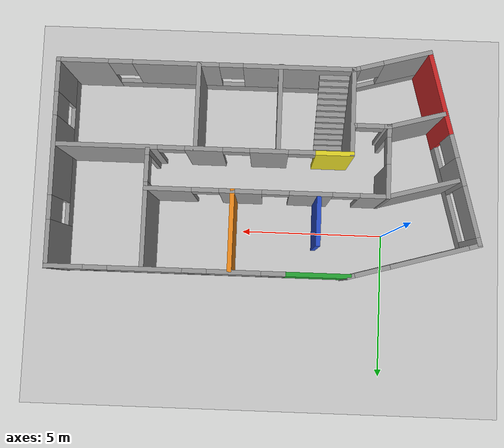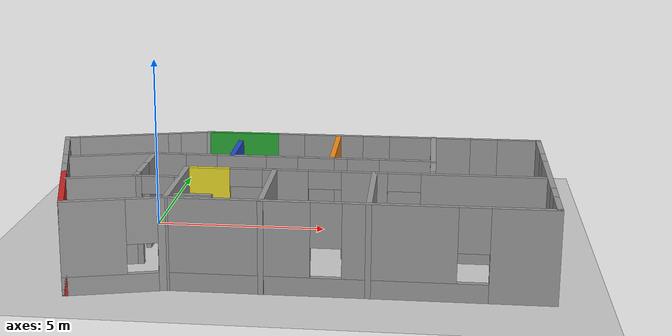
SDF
<sdf version="1.6">
 <world name="default">
  <model name="ground_plane">
   <static>1</static>
   <link name="link">
    <collision name="collision">
     <geometry><plane><normal>0 0 1</normal><size>100 100</size></plane></geometry>
     <surface>
      <contact><collide_bitmask>65535</collide_bitmask></contact>
      <friction><ode><mu>100</mu><mu2>50</mu2></ode></friction>
     </surface>
    </collision>
    <visual name="visual">
     <cast_shadows>0</cast_shadows>
     <geometry><plane><normal>0 0 1</normal><size>100 100</size></plane></geometry>
     <material>
      <script><uri>file://media/materials/scripts/gazebo.material</uri><name>Gazebo/Grey</name></script>
     </material>
    </visual>
   </link>
  </model>
  <model name="Home">
   <pose>4.21636 -2.21791 0 0 -0 0</pose>
   <link name="Stairs_1">
    <visual name="Stairs_1_Visual_0">
     <pose>-2.15165 -0.547903 0.083333 0 -0 0</pose>
     <geometry><box><size>1 0.161041 0.166667</size></box></geometry>
     <material>
      <script><uri>file://media/materials/scripts/gazebo.material</uri><name>Gazebo/Grey</name></script>
      <ambient>1 1 1 1</ambient>
     </material>
     <meta><layer>0</layer></meta>
    </visual>
    <collision name="Stairs_1_Collision_0">
     <geometry><box><size>1 0.161041 0.166667</size></box></geometry>
     <pose>-2.15165 -0.547903 0.083333 0 -0 0</pose>
    </collision>
    <visual name="Stairs_1_Visual_1">
     <pose>-2.15165 -0.708944 0.25 0 -0 0</pose>
     <geometry><box><size>1 0.161041 0.166667</size></box></geometry>
     <material>
      <script><uri>file://media/materials/scripts/gazebo.material</uri><name>Gazebo/Grey</name></script>
      <ambient>1 1 1 1</ambient>
     </material>
     <meta><layer>0</layer></meta>
    </visual>
    <collision name="Stairs_1_Collision_1">
     <geometry><box><size>1 0.161041 0.166667</size></box></geometry>
     <pose>-2.15165 -0.708944 0.25 0 -0 0</pose>
    </collision>
    <visual name="Stairs_1_Visual_2">
     <pose>-2.15165 -0.869986 0.416667 0 -0 0</pose>
     <geometry><box><size>1 0.161041 0.166667</size></box></geometry>
     <material>
      <script><uri>file://media/materials/scripts/gazebo.material</uri><name>Gazebo/Grey</name></script>
      <ambient>1 1 1 1</ambient>
     </material>
     <meta><layer>0</layer></meta>
    </visual>
    <collision name="Stairs_1_Collision_2">
     <geometry><box><size>1 0.161041 0.166667</size></box></geometry>
     <pose>-2.15165 -0.869986 0.416667 0 -0 0</pose>
    </collision>
    <visual name="Stairs_1_Visual_3">
     <pose>-2.15165 -1.03103 0.583333 0 -0 0</pose>
     <geometry><box><size>1 0.161041 0.166667</size></box></geometry>
     <material>
      <script><uri>file://media/materials/scripts/gazebo.material</uri><name>Gazebo/Grey</name></script>
      <ambient>1 1 1 1</ambient>
     </material>
     <meta><layer>0</layer></meta>
    </visual>
    <collision name="Stairs_1_Collision_3">
     <geometry><box><size>1 0.161041 0.166667</size></box></geometry>
     <pose>-2.15165 -1.03103 0.583333 0 -0 0</pose>
    </collision>
    <visual name="Stairs_1_Visual_4">
     <pose>-2.15165 -1.19207 0.75 0 -0 0</pose>
     <geometry><box><size>1 0.161041 0.166667</size></box></geometry>
     <material>
      <script><uri>file://media/materials/scripts/gazebo.material</uri><name>Gazebo/Grey</name></script>
      <ambient>1 1 1 1</ambient>
     </material>
     <meta><layer>0</layer></meta>
    </visual>
    <collision name="Stairs_1_Collision_4">
     <geometry><box><size>1 0.161041 0.166667</size></box></geometry>
     <pose>-2.15165 -1.19207 0.75 0 -0 0</pose>
    </collision>
    <visual name="Stairs_1_Visual_5">
     <pose>-2.15165 -1.35311 0.916667 0 -0 0</pose>
     <geometry><box><size>1 0.161041 0.166667</size></box></geometry>
     <material>
      <script><uri>file://media/materials/scripts/gazebo.material</uri><name>Gazebo/Grey</name></script>
      <ambient>1 1 1 1</ambient>
     </material>
     <meta><layer>0</layer></meta>
    </visual>
    <collision name="Stairs_1_Collision_5">
     <geometry><box><size>1 0.161041 0.166667</size></box></geometry>
     <pose>-2.15165 -1.35311 0.916667 0 -0 0</pose>
    </collision>
    <visual name="Stairs_1_Visual_6">
     <pose>-2.15165 -1.51415 1.08333 0 -0 0</pose>
     <geometry><box><size>1 0.161041 0.166667</size></box></geometry>
     <material>
      <script><uri>file://media/materials/scripts/gazebo.material</uri><name>Gazebo/Grey</name></script>
      <ambient>1 1 1 1</ambient>
     </material>
     <meta><layer>0</layer></meta>
    </visual>
    <collision name="Stairs_1_Collision_6">
     <geometry><box><size>1 0.161041 0.166667</size></box></geometry>
     <pose>-2.15165 -1.51415 1.08333 0 -0 0</pose>
    </collision>
    <visual name="Stairs_1_Visual_7">
     <pose>-2.15165 -1.67519 1.25 0 -0 0</pose>
     <geometry><box><size>1 0.161041 0.166667</size></box></geometry>
     <material>
      <script><uri>file://media/materials/scripts/gazebo.material</uri><name>Gazebo/Grey</name></script>
      <ambient>1 1 1 1</ambient>
     </material>
     <meta><layer>0</layer></meta>
    </visual>
    <collision name="Stairs_1_Collision_7">
     <geometry><box><size>1 0.161041 0.166667</size></box></geometry>
     <pose>-2.15165 -1.67519 1.25 0 -0 0</pose>
    </collision>
    <visual name="Stairs_1_Visual_8">
     <pose>-2.15165 -1.83623 1.41667 0 -0 0</pose>
     <geometry><box><size>1 0.161041 0.166667</size></box></geometry>
     <material>
      <script><uri>file://media/materials/scripts/gazebo.material</uri><name>Gazebo/Grey</name></script>
      <ambient>1 1 1 1</ambient>
     </material>
     <meta><layer>0</layer></meta>
    </visual>
    <collision name="Stairs_1_Collision_8">
     <geometry><box><size>1 0.161041 0.166667</size></box></geometry>
     <pose>-2.15165 -1.83623 1.41667 0 -0 0</pose>
    </collision>
    <visual name="Stairs_1_Visual_9">
     <pose>-2.15165 -1.99727 1.58333 0 -0 0</pose>
     <geometry><box><size>1 0.161041 0.166667</size></box></geometry>
     <material>
      <script><uri>file://media/materials/scripts/gazebo.material</uri><name>Gazebo/Grey</name></script>
      <ambient>1 1 1 1</ambient>
     </material>
     <meta><layer>0</layer></meta>
    </visual>
    <collision name="Stairs_1_Collision_9">
     <geometry><box><size>1 0.161041 0.166667</size></box></geometry>
     <pose>-2.15165 -1.99727 1.58333 0 -0 0</pose>
    </collision>
    <visual name="Stairs_1_Visual_10">
     <pose>-2.15165 -2.15831 1.75 0 -0 0</pose>
     <geometry><box><size>1 0.161041 0.166667</size></box></geometry>
     <material>
      <script><uri>file://media/materials/scripts/gazebo.material</uri><name>Gazebo/Grey</name></script>
      <ambient>1 1 1 1</ambient>
     </material>
     <meta><layer>0</layer></meta>
    </visual>
    <collision name="Stairs_1_Collision_10">
     <geometry><box><size>1 0.161041 0.166667</size></box></geometry>
     <pose>-2.15165 -2.15831 1.75 0 -0 0</pose>
    </collision>
    <visual name="Stairs_1_Visual_11">
     <pose>-2.15165 -2.31935 1.91667 0 -0 0</pose>
     <geometry><box><size>1 0.161041 0.166667</size></box></geometry>
     <material>
      <script><uri>file://media/materials/scripts/gazebo.material</uri><name>Gazebo/Grey</name></script>
      <ambient>1 1 1 1</ambient>
     </material>
     <meta><layer>0</layer></meta>
    </visual>
    <collision name="Stairs_1_Collision_11">
     <geometry><box><size>1 0.161041 0.166667</size></box></geometry>
     <pose>-2.15165 -2.31935 1.91667 0 -0 0</pose>
    </collision>
    <visual name="Stairs_1_Visual_12">
     <pose>-2.15165 -2.4804 2.08333 0 -0 0</pose>
     <geometry><box><size>1 0.161041 0.166667</size></box></geometry>
     <material>
      <script><uri>file://media/materials/scripts/gazebo.material</uri><name>Gazebo/Grey</name></script>
      <ambient>1 1 1 1</ambient>
     </material>
     <meta><layer>0</layer></meta>
    </visual>
    <collision name="Stairs_1_Collision_12">
     <geometry><box><size>1 0.161041 0.166667</size></box></geometry>
     <pose>-2.15165 -2.4804 2.08333 0 -0 0</pose>
    </collision>
    <visual name="Stairs_1_Visual_13">
     <pose>-2.15165 -2.64144 2.25 0 -0 0</pose>
     <geometry><box><size>1 0.161041 0.166667</size></box></geometry>
     <material>
      <script><uri>file://media/materials/scripts/gazebo.material</uri><name>Gazebo/Grey</name></script>
      <ambient>1 1 1 1</ambient>
     </material>
     <meta><layer>0</layer></meta>
    </visual>
    <collision name="Stairs_1_Collision_13">
     <geometry><box><size>1 0.161041 0.166667</size></box></geometry>
     <pose>-2.15165 -2.64144 2.25 0 -0 0</pose>
    </collision>
    <visual name="Stairs_1_Visual_14">
     <pose>-2.15165 -2.80248 2.41667 0 -0 0</pose>
     <geometry><box><size>1 0.161041 0.166667</size></box></geometry>
     <material>
      <script><uri>file://media/materials/scripts/gazebo.material</uri><name>Gazebo/Grey</name></script>
      <ambient>1 1 1 1</ambient>
     </material>
     <meta><layer>0</layer></meta>
    </visual>
    <collision name="Stairs_1_Collision_14">
     <geometry><box><size>1 0.161041 0.166667</size></box></geometry>
     <pose>-2.15165 -2.80248 2.41667 0 -0 0</pose>
    </collision>
   </link>
   <link name="Wall_10">
    <collision name="Wall_10_Collision">
     <geometry><box><size>3 0.15 2.5</size></box></geometry>
     <pose>0 0 1.25 0 -0 0</pose>
    </collision>
    <visual name="Wall_10_Visual">
     <pose>0 0 1.25 0 -0 0</pose>
     <geometry><box><size>3 0.15 2.5</size></box></geometry>
     <material>
      <script><uri>file://media/materials/scripts/gazebo.material</uri><name>Gazebo/Grey</name></script>
      <ambient>1 1 1 1</ambient>
     </material>
     <meta><layer>0</layer></meta>
    </visual>
    <pose>-2.80646 -1.68133 0 0 -0 1.5708</pose>
   </link>
   <link name="Wall_11">
    <pose>2.11854 -0.256327 0 0 -0 0</pose>
    <visual name="Wall_11_Visual_0">
     <pose>-4.36163 0 1.25 0 -0 0</pose>
     <geometry><box><size>1.27675 0.15 2.5</size></box></geometry>
     <material>
      <script><uri>file://media/materials/scripts/gazebo.material</uri><name>Gazebo/Yellow</name></script>
      <ambient>1 1 1 1</ambient>
     </material>
     <meta><layer>0</layer></meta>
    </visual>
    <collision name="Wall_11_Collision_0">
     <geometry><box><size>1.27675 0.15 2.5</size></box></geometry>
     <pose>-4.36163 0 1.25 0 -0 0</pose>
    </collision>
    <visual name="Wall_11_Visual_1">
     <pose>-2.18887 0 1.25 0 -0 0</pose>
     <geometry><box><size>1.26877 0.15 2.5</size></box></geometry>
     <material>
      <script><uri>file://media/materials/scripts/gazebo.material</uri><name>Gazebo/Grey</name></script>
      <ambient>1 1 1 1</ambient>
     </material>
     <meta><layer>0</layer></meta>
    </visual>
    <collision name="Wall_11_Collision_1">
     <geometry><box><size>1.26877 0.15 2.5</size></box></geometry>
     <pose>-2.18887 0 1.25 0 -0 0</pose>
    </collision>
    <visual name="Wall_11_Visual_2">
     <pose>-0.028846 0 1.25 0 -0 0</pose>
     <geometry><box><size>1.25128 0.15 2.5</size></box></geometry>
     <material>
      <script><uri>file://media/materials/scripts/gazebo.material</uri><name>Gazebo/Grey</name></script>
      <ambient>1 1 1 1</ambient>
     </material>
     <meta><layer>0</layer></meta>
    </visual>
    <collision name="Wall_11_Collision_2">
     <geometry><box><size>1.25128 0.15 2.5</size></box></geometry>
     <pose>-0.028846 0 1.25 0 -0 0</pose>
    </collision>
    <visual name="Wall_11_Visual_3">
     <pose>3.2484 0 1.25 0 -0 0</pose>
     <geometry><box><size>3.50321 0.15 2.5</size></box></geometry>
     <material>
      <script><uri>file://media/materials/scripts/gazebo.material</uri><name>Gazebo/Grey</name></script>
      <ambient>1 1 1 1</ambient>
     </material>
     <meta><layer>0</layer></meta>
    </visual>
    <collision name="Wall_11_Collision_3">
     <geometry><box><size>3.50321 0.15 2.5</size></box></geometry>
     <pose>3.2484 0 1.25 0 -0 0</pose>
    </collision>
    <visual name="Wall_11_Visual_4">
     <pose>-3.27325 0 2.25 0 -0 0</pose>
     <geometry><box><size>0.9 0.15 0.5</size></box></geometry>
     <material>
      <script><uri>file://media/materials/scripts/gazebo.material</uri><name>Gazebo/Grey</name></script>
      <ambient>1 1 1 1</ambient>
     </material>
     <meta><layer>0</layer></meta>
    </visual>
    <collision name="Wall_11_Collision_4">
     <geometry><box><size>0.9 0.15 0.5</size></box></geometry>
     <pose>-3.27325 0 2.25 0 -0 0</pose>
    </collision>
    <visual name="Wall_11_Visual_5">
     <pose>-1.10448 0 2.25 0 -0 0</pose>
     <geometry><box><size>0.9 0.15 0.5</size></box></geometry>
     <material>
      <script><uri>file://media/materials/scripts/gazebo.material</uri><name>Gazebo/Grey</name></script>
      <ambient>1 1 1 1</ambient>
     </material>
     <meta><layer>0</layer></meta>
    </visual>
    <collision name="Wall_11_Collision_5">
     <geometry><box><size>0.9 0.15 0.5</size></box></geometry>
     <pose>-1.10448 0 2.25 0 -0 0</pose>
    </collision>
    <visual name="Wall_11_Visual_6">
     <pose>1.04679 0 2.25 0 -0 0</pose>
     <geometry><box><size>0.9 0.15 0.5</size></box></geometry>
     <material>
      <script><uri>file://media/materials/scripts/gazebo.material</uri><name>Gazebo/Grey</name></script>
      <ambient>1 1 1 1</ambient>
     </material>
     <meta><layer>0</layer></meta>
    </visual>
    <collision name="Wall_11_Collision_6">
     <geometry><box><size>0.9 0.15 0.5</size></box></geometry>
     <pose>1.04679 0 2.25 0 -0 0</pose>
    </collision>
   </link>
   <link name="Wall_13">
    <pose>3.93489 0.433995 0 0 -0 1.5708</pose>
    <visual name="Wall_13_Visual_0">
     <pose>-0.587699 0 1.25 0 -0 0</pose>
     <geometry><box><size>0.324602 0.15 2.5</size></box></geometry>
     <material>
      <script><uri>file://media/materials/scripts/gazebo.material</uri><name>Gazebo/Grey</name></script>
      <ambient>1 1 1 1</ambient>
     </material>
     <meta><layer>0</layer></meta>
    </visual>
    <collision name="Wall_13_Collision_0">
     <geometry><box><size>0.324602 0.15 2.5</size></box></geometry>
     <pose>-0.587699 0 1.25 0 -0 0</pose>
    </collision>
    <visual name="Wall_13_Visual_1">
     <pose>0.612301 0 1.25 0 -0 0</pose>
     <geometry><box><size>0.275398 0.15 2.5</size></box></geometry>
     <material>
      <script><uri>file://media/materials/scripts/gazebo.material</uri><name>Gazebo/Grey</name></script>
      <ambient>1 1 1 1</ambient>
     </material>
     <meta><layer>0</layer></meta>
    </visual>
    <collision name="Wall_13_Collision_1">
     <geometry><box><size>0.275398 0.15 2.5</size></box></geometry>
     <pose>0.612301 0 1.25 0 -0 0</pose>
    </collision>
    <visual name="Wall_13_Visual_2">
     <pose>0.024602 0 2.25 0 -0 0</pose>
     <geometry><box><size>0.9 0.15 0.5</size></box></geometry>
     <material>
      <script><uri>file://media/materials/scripts/gazebo.material</uri><name>Gazebo/Grey</name></script>
      <ambient>1 1 1 1</ambient>
     </material>
     <meta><layer>0</layer></meta>
    </visual>
    <collision name="Wall_13_Collision_2">
     <geometry><box><size>0.9 0.15 0.5</size></box></geometry>
     <pose>0.024602 0 2.25 0 -0 0</pose>
    </collision>
   </link>
   <link name="Wall_14">
    <pose>2.50989 1.10899 0 0 -0 3.14159</pose>
    <visual name="Wall_14_Visual_0">
     <pose>-0.708057 0 1.25 0 -0 0</pose>
     <geometry><box><size>1.58389 0.15 2.5</size></box></geometry>
     <material>
      <script><uri>file://media/materials/scripts/gazebo.material</uri><name>Gazebo/Grey</name></script>
      <ambient>1 1 1 1</ambient>
     </material>
     <meta><layer>0</layer></meta>
    </visual>
    <collision name="Wall_14_Collision_0">
     <geometry><box><size>1.58389 0.15 2.5</size></box></geometry>
     <pose>-0.708057 0 1.25 0 -0 0</pose>
    </collision>
    <visual name="Wall_14_Visual_1">
     <pose>1.24194 0 1.25 0 -0 0</pose>
     <geometry><box><size>0.516113 0.15 2.5</size></box></geometry>
     <material>
      <script><uri>file://media/materials/scripts/gazebo.material</uri><name>Gazebo/Grey</name></script>
      <ambient>1 1 1 1</ambient>
     </material>
     <meta><layer>0</layer></meta>
    </visual>
    <collision name="Wall_14_Collision_1">
     <geometry><box><size>0.516113 0.15 2.5</size></box></geometry>
     <pose>1.24194 0 1.25 0 -0 0</pose>
    </collision>
    <visual name="Wall_14_Visual_2">
     <pose>0.533887 0 2.25 0 -0 0</pose>
     <geometry><box><size>0.9 0.15 0.5</size></box></geometry>
     <material>
      <script><uri>file://media/materials/scripts/gazebo.material</uri><name>Gazebo/Grey</name></script>
      <ambient>1 1 1 1</ambient>
     </material>
     <meta><layer>0</layer></meta>
    </visual>
    <collision name="Wall_14_Collision_2">
     <geometry><box><size>0.9 0.15 0.5</size></box></geometry>
     <pose>0.533887 0 2.25 0 -0 0</pose>
    </collision>
   </link>
   <link name="Wall_15">
    <collision name="Wall_15_Collision">
     <geometry><box><size>2.75 0.15 2.5</size></box></geometry>
     <pose>0 0 1.25 0 -0 0</pose>
    </collision>
    <visual name="Wall_15_Visual">
     <pose>0 0 1.25 0 -0 0</pose>
     <geometry><box><size>2.75 0.15 2.5</size></box></geometry>
     <material>
      <script><uri>file://media/materials/scripts/gazebo.material</uri><name>Gazebo/Orange</name></script>
      <ambient>1 1 1 1</ambient>
     </material>
     <meta><layer>0</layer></meta>
    </visual>
    <pose>1.08489 2.40899 0 0 -0 1.5708</pose>
   </link>
   <link name="Wall_17">
    <pose>-1.46511 1.10899 0 0 -0 3.14159</pose>
    <visual name="Wall_17_Visual_0">
     <pose>-2.10371 0 1.25 0 -0 0</pose>
     <geometry><box><size>1.04258 0.15 2.5</size></box></geometry>
     <material>
      <script><uri>file://media/materials/scripts/gazebo.material</uri><name>Gazebo/Grey</name></script>
      <ambient>1 1 1 1</ambient>
     </material>
     <meta><layer>0</layer></meta>
    </visual>
    <collision name="Wall_17_Collision_0">
     <geometry><box><size>1.04258 0.15 2.5</size></box></geometry>
     <pose>-2.10371 0 1.25 0 -0 0</pose>
    </collision>
    <visual name="Wall_17_Visual_1">
     <pose>0.021919 0 1.25 0 -0 0</pose>
     <geometry><box><size>1.40869 0.15 2.5</size></box></geometry>
     <material>
      <script><uri>file://media/materials/scripts/gazebo.material</uri><name>Gazebo/Grey</name></script>
      <ambient>1 1 1 1</ambient>
     </material>
     <meta><layer>0</layer></meta>
    </visual>
    <collision name="Wall_17_Collision_1">
     <geometry><box><size>1.40869 0.15 2.5</size></box></geometry>
     <pose>0.021919 0 1.25 0 -0 0</pose>
    </collision>
    <visual name="Wall_17_Visual_2">
     <pose>2.12563 0 1.25 0 -0 0</pose>
     <geometry><box><size>0.998737 0.15 2.5</size></box></geometry>
     <material>
      <script><uri>file://media/materials/scripts/gazebo.material</uri><name>Gazebo/Grey</name></script>
      <ambient>1 1 1 1</ambient>
     </material>
     <meta><layer>0</layer></meta>
    </visual>
    <collision name="Wall_17_Collision_2">
     <geometry><box><size>0.998737 0.15 2.5</size></box></geometry>
     <pose>2.12563 0 1.25 0 -0 0</pose>
    </collision>
    <visual name="Wall_17_Visual_3">
     <pose>-1.13243 0 2.25 0 -0 0</pose>
     <geometry><box><size>0.9 0.15 0.5</size></box></geometry>
     <material>
      <script><uri>file://media/materials/scripts/gazebo.material</uri><name>Gazebo/Grey</name></script>
      <ambient>1 1 1 1</ambient>
     </material>
     <meta><layer>0</layer></meta>
    </visual>
    <collision name="Wall_17_Collision_3">
     <geometry><box><size>0.9 0.15 0.5</size></box></geometry>
     <pose>-1.13243 0 2.25 0 -0 0</pose>
    </collision>
    <visual name="Wall_17_Visual_4">
     <pose>1.17626 0 2.25 0 -0 0</pose>
     <geometry><box><size>0.9 0.15 0.5</size></box></geometry>
     <material>
      <script><uri>file://media/materials/scripts/gazebo.material</uri><name>Gazebo/Grey</name></script>
      <ambient>1 1 1 1</ambient>
     </material>
     <meta><layer>0</layer></meta>
    </visual>
    <collision name="Wall_17_Collision_4">
     <geometry><box><size>0.9 0.15 0.5</size></box></geometry>
     <pose>1.17626 0 2.25 0 -0 0</pose>
    </collision>
   </link>
   <link name="Wall_18">
    <collision name="Wall_18_Collision">
     <geometry><box><size>2.5 0.15 2.5</size></box></geometry>
     <pose>0 0 1.25 0 -0 0</pose>
    </collision>
    <visual name="Wall_18_Visual">
     <pose>0 0 1.25 0 -0 0</pose>
     <geometry><box><size>2.5 0.15 2.5</size></box></geometry>
     <material>
      <script><uri>file://media/materials/scripts/gazebo.material</uri><name>Gazebo/Grey</name></script>
      <ambient>1 1 1 1</ambient>
     </material>
     <meta><layer>0</layer></meta>
    </visual>
    <pose>-5.15007 0.804882 0 0 0 -2.87979</pose>
   </link>
   <link name="Wall_2">
    <pose>2.11854 3.76116 0 0 -0 0</pose>
    <visual name="Wall_2_Visual_0">
     <pose>-3.93436 0 1.25 0 -0 0</pose>
     <geometry><box><size>2.13129 0.15 2.5</size></box></geometry>
     <material>
      <script><uri>file://media/materials/scripts/gazebo.material</uri><name>Gazebo/Green</name></script>
      <ambient>1 1 1 1</ambient>
     </material>
     <meta><layer>0</layer></meta>
    </visual>
    <collision name="Wall_2_Collision_0">
     <geometry><box><size>2.13129 0.15 2.5</size></box></geometry>
     <pose>-3.93436 0 1.25 0 -0 0</pose>
    </collision>
    <visual name="Wall_2_Visual_1">
     <pose>1.06564 0 0.25 0 -0 0</pose>
     <geometry><box><size>7.86871 0.15 0.5</size></box></geometry>
     <material>
      <script><uri>file://media/materials/scripts/gazebo.material</uri><name>Gazebo/Grey</name></script>
      <ambient>1 1 1 1</ambient>
     </material>
     <meta><layer>0</layer></meta>
    </visual>
    <collision name="Wall_2_Collision_1">
     <geometry><box><size>7.86871 0.15 0.5</size></box></geometry>
     <pose>1.06564 0 0.25 0 -0 0</pose>
    </collision>
    <visual name="Wall_2_Visual_2">
     <pose>-1.18319 0 1.5 0 -0 0</pose>
     <geometry><box><size>1.77104 0.15 2</size></box></geometry>
     <material>
      <script><uri>file://media/materials/scripts/gazebo.material</uri><name>Gazebo/Grey</name></script>
      <ambient>1 1 1 1</ambient>
     </material>
     <meta><layer>0</layer></meta>
    </visual>
    <collision name="Wall_2_Collision_2">
     <geometry><box><size>1.77104 0.15 2</size></box></geometry>
     <pose>-1.18319 0 1.5 0 -0 0</pose>
    </collision>
    <visual name="Wall_2_Visual_3">
     <pose>1.71142 0 1.5 0 -0 0</pose>
     <geometry><box><size>2.41817 0.15 2</size></box></geometry>
     <material>
      <script><uri>file://media/materials/scripts/gazebo.material</uri><name>Gazebo/Grey</name></script>
      <ambient>1 1 1 1</ambient>
     </material>
     <meta><layer>0</layer></meta>
    </visual>
    <collision name="Wall_2_Collision_3">
     <geometry><box><size>2.41817 0.15 2</size></box></geometry>
     <pose>1.71142 0 1.5 0 -0 0</pose>
    </collision>
    <visual name="Wall_2_Visual_4">
     <pose>4.36025 0 1.5 0 -0 0</pose>
     <geometry><box><size>1.2795 0.15 2</size></box></geometry>
     <material>
      <script><uri>file://media/materials/scripts/gazebo.material</uri><name>Gazebo/Grey</name></script>
      <ambient>1 1 1 1</ambient>
     </material>
     <meta><layer>0</layer></meta>
    </visual>
    <collision name="Wall_2_Collision_4">
     <geometry><box><size>1.2795 0.15 2</size></box></geometry>
     <pose>4.36025 0 1.5 0 -0 0</pose>
    </collision>
    <visual name="Wall_2_Visual_5">
     <pose>-2.46871 0 1.9 0 -0 0</pose>
     <geometry><box><size>0.8 0.15 1.2</size></box></geometry>
     <material>
      <script><uri>file://media/materials/scripts/gazebo.material</uri><name>Gazebo/Grey</name></script>
      <ambient>1 1 1 1</ambient>
     </material>
     <meta><layer>0</layer></meta>
    </visual>
    <collision name="Wall_2_Collision_5">
     <geometry><box><size>0.8 0.15 1.2</size></box></geometry>
     <pose>-2.46871 0 1.9 0 -0 0</pose>
    </collision>
    <visual name="Wall_2_Visual_6">
     <pose>0.10233 0 1.9 0 -0 0</pose>
     <geometry><box><size>0.8 0.15 1.2</size></box></geometry>
     <material>
      <script><uri>file://media/materials/scripts/gazebo.material</uri><name>Gazebo/Grey</name></script>
      <ambient>1 1 1 1</ambient>
     </material>
     <meta><layer>0</layer></meta>
    </visual>
    <collision name="Wall_2_Collision_6">
     <geometry><box><size>0.8 0.15 1.2</size></box></geometry>
     <pose>0.10233 0 1.9 0 -0 0</pose>
    </collision>
    <visual name="Wall_2_Visual_7">
     <pose>3.3205 0 1.9 0 -0 0</pose>
     <geometry><box><size>0.8 0.15 1.2</size></box></geometry>
     <material>
      <script><uri>file://media/materials/scripts/gazebo.material</uri><name>Gazebo/Grey</name></script>
      <ambient>1 1 1 1</ambient>
     </material>
     <meta><layer>0</layer></meta>
    </visual>
    <collision name="Wall_2_Collision_7">
     <geometry><box><size>0.8 0.15 1.2</size></box></geometry>
     <pose>3.3205 0 1.9 0 -0 0</pose>
    </collision>
   </link>
   <link name="Wall_20">
    <pose>-4.01511 -0.048515 0 0 0 -1.5708</pose>
    <visual name="Wall_20_Visual_0">
     <pose>-0.65756 0 1.25 0 -0 0</pose>
     <geometry><box><size>1.1499 0.15 2.5</size></box></geometry>
     <material>
      <script><uri>file://media/materials/scripts/gazebo.material</uri><name>Gazebo/Grey</name></script>
      <ambient>1 1 1 1</ambient>
     </material>
     <meta><layer>0</layer></meta>
    </visual>
    <collision name="Wall_20_Collision_0">
     <geometry><box><size>1.1499 0.15 2.5</size></box></geometry>
     <pose>-0.65756 0 1.25 0 -0 0</pose>
    </collision>
    <visual name="Wall_20_Visual_1">
     <pose>1.02495 0 1.25 0 -0 0</pose>
     <geometry><box><size>0.415119 0.15 2.5</size></box></geometry>
     <material>
      <script><uri>file://media/materials/scripts/gazebo.material</uri><name>Gazebo/Grey</name></script>
      <ambient>1 1 1 1</ambient>
     </material>
     <meta><layer>0</layer></meta>
    </visual>
    <collision name="Wall_20_Collision_1">
     <geometry><box><size>0.415119 0.15 2.5</size></box></geometry>
     <pose>1.02495 0 1.25 0 -0 0</pose>
    </collision>
    <visual name="Wall_20_Visual_2">
     <pose>0.367391 0 2.25 0 -0 0</pose>
     <geometry><box><size>0.9 0.15 0.5</size></box></geometry>
     <material>
      <script><uri>file://media/materials/scripts/gazebo.material</uri><name>Gazebo/Grey</name></script>
      <ambient>1 1 1 1</ambient>
     </material>
     <meta><layer>0</layer></meta>
    </visual>
    <collision name="Wall_20_Collision_2">
     <geometry><box><size>0.9 0.15 0.5</size></box></geometry>
     <pose>0.367391 0 2.25 0 -0 0</pose>
    </collision>
   </link>
   <link name="Wall_21">
    <collision name="Wall_21_Collision">
     <geometry><box><size>2 0.15 2.5</size></box></geometry>
     <pose>0 0 1.25 0 -0 0</pose>
    </collision>
    <visual name="Wall_21_Visual">
     <pose>0 0 1.25 0 -0 0</pose>
     <geometry><box><size>2 0.15 2.5</size></box></geometry>
     <material>
      <script><uri>file://media/materials/scripts/gazebo.material</uri><name>Gazebo/Grey</name></script>
      <ambient>1 1 1 1</ambient>
     </material>
     <meta><layer>0</layer></meta>
    </visual>
    <pose>-4.90859 -1.46292 0 0 0 -2.87979</pose>
   </link>
   <link name="Wall_23">
    <pose>-3.46511 -1.22352 0 0 -0 0</pose>
    <visual name="Wall_23_Visual_0">
     <pose>-0.501668 0 1.25 0 -0 0</pose>
     <geometry><box><size>0.246664 0.15 2.5</size></box></geometry>
     <material>
      <script><uri>file://media/materials/scripts/gazebo.material</uri><name>Gazebo/Grey</name></script>
      <ambient>1 1 1 1</ambient>
     </material>
     <meta><layer>0</layer></meta>
    </visual>
    <collision name="Wall_23_Collision_0">
     <geometry><box><size>0.246664 0.15 2.5</size></box></geometry>
     <pose>-0.501668 0 1.25 0 -0 0</pose>
    </collision>
    <visual name="Wall_23_Visual_1">
     <pose>0.573332 0 1.25 0 -0 0</pose>
     <geometry><box><size>0.103336 0.15 2.5</size></box></geometry>
     <material>
      <script><uri>file://media/materials/scripts/gazebo.material</uri><name>Gazebo/Grey</name></script>
      <ambient>1 1 1 1</ambient>
     </material>
     <meta><layer>0</layer></meta>
    </visual>
    <collision name="Wall_23_Collision_1">
     <geometry><box><size>0.103336 0.15 2.5</size></box></geometry>
     <pose>0.573332 0 1.25 0 -0 0</pose>
    </collision>
    <visual name="Wall_23_Visual_2">
     <pose>0.071664 0 2.25 0 -0 0</pose>
     <geometry><box><size>0.9 0.15 0.5</size></box></geometry>
     <material>
      <script><uri>file://media/materials/scripts/gazebo.material</uri><name>Gazebo/Grey</name></script>
      <ambient>1 1 1 1</ambient>
     </material>
     <meta><layer>0</layer></meta>
    </visual>
    <collision name="Wall_23_Collision_2">
     <geometry><box><size>0.9 0.15 0.5</size></box></geometry>
     <pose>0.071664 0 2.25 0 -0 0</pose>
    </collision>
   </link>
   <link name="Wall_25">
    <collision name="Wall_25_Collision">
     <geometry><box><size>2.75 0.15 2.5</size></box></geometry>
     <pose>0 0 1.25 0 -0 0</pose>
    </collision>
    <visual name="Wall_25_Visual">
     <pose>0 0 1.25 0 -0 0</pose>
     <geometry><box><size>2.75 0.15 2.5</size></box></geometry>
     <material>
      <script><uri>file://media/materials/scripts/gazebo.material</uri><name>Gazebo/Grey</name></script>
      <ambient>1 1 1 1</ambient>
     </material>
     <meta><layer>0</layer></meta>
    </visual>
    <pose>3.93489 2.40899 0 0 -0 1.5708</pose>
   </link>
   <link name="Wall_27">
    <collision name="Wall_27_Collision">
     <geometry><box><size>3 0.15 2.5</size></box></geometry>
     <pose>0 0 1.25 0 -0 0</pose>
    </collision>
    <visual name="Wall_27_Visual">
     <pose>0 0 1.25 0 -0 0</pose>
     <geometry><box><size>3 0.15 2.5</size></box></geometry>
     <material>
      <script><uri>file://media/materials/scripts/gazebo.material</uri><name>Gazebo/Grey</name></script>
      <ambient>1 1 1 1</ambient>
     </material>
     <meta><layer>0</layer></meta>
    </visual>
    <pose>2.36079 -1.6835 0 0 0 -1.5708</pose>
   </link>
   <link name="Wall_29">
    <collision name="Wall_29_Collision">
     <geometry><box><size>3 0.15 2.5</size></box></geometry>
     <pose>0 0 1.25 0 -0 0</pose>
    </collision>
    <visual name="Wall_29_Visual">
     <pose>0 0 1.25 0 -0 0</pose>
     <geometry><box><size>3 0.15 2.5</size></box></geometry>
     <material>
      <script><uri>file://media/materials/scripts/gazebo.material</uri><name>Gazebo/Grey</name></script>
      <ambient>1 1 1 1</ambient>
     </material>
     <meta><layer>0</layer></meta>
    </visual>
    <pose>-0.367664 -1.70099 0 0 0 -1.5708</pose>
   </link>
   <link name="Wall_31">
    <collision name="Wall_31_Collision">
     <geometry><box><size>1.75 0.15 2.5</size></box></geometry>
     <pose>0 0 1.25 0 -0 0</pose>
    </collision>
    <visual name="Wall_31_Visual">
     <pose>0 0 1.25 0 -0 0</pose>
     <geometry><box><size>1.75 0.15 2.5</size></box></geometry>
     <material>
      <script><uri>file://media/materials/scripts/gazebo.material</uri><name>Gazebo/Blue</name></script>
      <ambient>1 1 1 1</ambient>
     </material>
     <meta><layer>0</layer></meta>
    </visual>
    <pose>-1.76687 1.94071 0 0 -0 1.5708</pose>
   </link>
   <link name="Wall_4">
    <pose>7.04354 0.336163 0 0 0 -1.5708</pose>
    <visual name="Wall_4_Visual_0">
     <pose>-2.71956 0 1.25 0 -0 0</pose>
     <geometry><box><size>1.59585 0.15 2.5</size></box></geometry>
     <material>
      <script><uri>file://media/materials/scripts/gazebo.material</uri><name>Gazebo/Grey</name></script>
      <ambient>1 1 1 1</ambient>
     </material>
     <meta><layer>0</layer></meta>
    </visual>
    <collision name="Wall_4_Collision_0">
     <geometry><box><size>1.59585 0.15 2.5</size></box></geometry>
     <pose>-2.71956 0 1.25 0 -0 0</pose>
    </collision>
    <visual name="Wall_4_Visual_1">
     <pose>0.797925 0 0.25 0 -0 0</pose>
     <geometry><box><size>5.43913 0.15 0.5</size></box></geometry>
     <material>
      <script><uri>file://media/materials/scripts/gazebo.material</uri><name>Gazebo/Grey</name></script>
      <ambient>1 1 1 1</ambient>
     </material>
     <meta><layer>0</layer></meta>
    </visual>
    <collision name="Wall_4_Collision_1">
     <geometry><box><size>5.43913 0.15 0.5</size></box></geometry>
     <pose>0.797925 0 0.25 0 -0 0</pose>
    </collision>
    <visual name="Wall_4_Visual_2">
     <pose>0.209877 0 1.5 0 -0 0</pose>
     <geometry><box><size>2.66303 0.15 2</size></box></geometry>
     <material>
      <script><uri>file://media/materials/scripts/gazebo.material</uri><name>Gazebo/Grey</name></script>
      <ambient>1 1 1 1</ambient>
     </material>
     <meta><layer>0</layer></meta>
    </visual>
    <collision name="Wall_4_Collision_2">
     <geometry><box><size>2.66303 0.15 2</size></box></geometry>
     <pose>0.209877 0 1.5 0 -0 0</pose>
    </collision>
    <visual name="Wall_4_Visual_3">
     <pose>2.92944 0 1.5 0 -0 0</pose>
     <geometry><box><size>1.1761 0.15 2</size></box></geometry>
     <material>
      <script><uri>file://media/materials/scripts/gazebo.material</uri><name>Gazebo/Grey</name></script>
      <ambient>1 1 1 1</ambient>
     </material>
     <meta><layer>0</layer></meta>
    </visual>
    <collision name="Wall_4_Collision_3">
     <geometry><box><size>1.1761 0.15 2</size></box></geometry>
     <pose>2.92944 0 1.5 0 -0 0</pose>
    </collision>
    <visual name="Wall_4_Visual_4">
     <pose>-1.52164 0 1.9 0 -0 0</pose>
     <geometry><box><size>0.8 0.15 1.2</size></box></geometry>
     <material>
      <script><uri>file://media/materials/scripts/gazebo.material</uri><name>Gazebo/Grey</name></script>
      <ambient>1 1 1 1</ambient>
     </material>
     <meta><layer>0</layer></meta>
    </visual>
    <collision name="Wall_4_Collision_4">
     <geometry><box><size>0.8 0.15 1.2</size></box></geometry>
     <pose>-1.52164 0 1.9 0 -0 0</pose>
    </collision>
    <visual name="Wall_4_Visual_5">
     <pose>1.94139 0 1.9 0 -0 0</pose>
     <geometry><box><size>0.8 0.15 1.2</size></box></geometry>
     <material>
      <script><uri>file://media/materials/scripts/gazebo.material</uri><name>Gazebo/Grey</name></script>
      <ambient>1 1 1 1</ambient>
     </material>
     <meta><layer>0</layer></meta>
    </visual>
    <collision name="Wall_4_Collision_5">
     <geometry><box><size>0.8 0.15 1.2</size></box></geometry>
     <pose>1.94139 0 1.9 0 -0 0</pose>
    </collision>
   </link>
   <link name="Wall_5">
    <pose>2.11854 -3.10633 0 0 -0 3.14159</pose>
    <visual name="Wall_5_Visual_0">
     <pose>-4.13288 0 1.25 0 -0 0</pose>
     <geometry><box><size>1.73424 0.15 2.5</size></box></geometry>
     <material>
      <script><uri>file://media/materials/scripts/gazebo.material</uri><name>Gazebo/Grey</name></script>
      <ambient>1 1 1 1</ambient>
     </material>
     <meta><layer>0</layer></meta>
    </visual>
    <collision name="Wall_5_Collision_0">
     <geometry><box><size>1.73424 0.15 2.5</size></box></geometry>
     <pose>-4.13288 0 1.25 0 -0 0</pose>
    </collision>
    <visual name="Wall_5_Visual_1">
     <pose>0.86712 0 0.25 0 -0 0</pose>
     <geometry><box><size>8.26576 0.15 0.5</size></box></geometry>
     <material>
      <script><uri>file://media/materials/scripts/gazebo.material</uri><name>Gazebo/Grey</name></script>
      <ambient>1 1 1 1</ambient>
     </material>
     <meta><layer>0</layer></meta>
    </visual>
    <collision name="Wall_5_Collision_1">
     <geometry><box><size>8.26576 0.15 0.5</size></box></geometry>
     <pose>0.86712 0 0.25 0 -0 0</pose>
    </collision>
    <visual name="Wall_5_Visual_2">
     <pose>-1.02056 0 1.5 0 -0 0</pose>
     <geometry><box><size>2.8904 0.15 2</size></box></geometry>
     <material>
      <script><uri>file://media/materials/scripts/gazebo.material</uri><name>Gazebo/Grey</name></script>
      <ambient>1 1 1 1</ambient>
     </material>
     <meta><layer>0</layer></meta>
    </visual>
    <collision name="Wall_5_Collision_2">
     <geometry><box><size>2.8904 0.15 2</size></box></geometry>
     <pose>-1.02056 0 1.5 0 -0 0</pose>
    </collision>
    <visual name="Wall_5_Visual_3">
     <pose>3.11232 0 1.5 0 -0 0</pose>
     <geometry><box><size>3.77536 0.15 2</size></box></geometry>
     <material>
      <script><uri>file://media/materials/scripts/gazebo.material</uri><name>Gazebo/Grey</name></script>
      <ambient>1 1 1 1</ambient>
     </material>
     <meta><layer>0</layer></meta>
    </visual>
    <collision name="Wall_5_Collision_3">
     <geometry><box><size>3.77536 0.15 2</size></box></geometry>
     <pose>3.11232 0 1.5 0 -0 0</pose>
    </collision>
    <visual name="Wall_5_Visual_4">
     <pose>-2.86576 0 1.9 0 -0 0</pose>
     <geometry><box><size>0.8 0.15 1.2</size></box></geometry>
     <material>
      <script><uri>file://media/materials/scripts/gazebo.material</uri><name>Gazebo/Grey</name></script>
      <ambient>1 1 1 1</ambient>
     </material>
     <meta><layer>0</layer></meta>
    </visual>
    <collision name="Wall_5_Collision_4">
     <geometry><box><size>0.8 0.15 1.2</size></box></geometry>
     <pose>-2.86576 0 1.9 0 -0 0</pose>
    </collision>
    <visual name="Wall_5_Visual_5">
     <pose>0.824643 0 1.9 0 -0 0</pose>
     <geometry><box><size>0.8 0.15 1.2</size></box></geometry>
     <material>
      <script><uri>file://media/materials/scripts/gazebo.material</uri><name>Gazebo/Grey</name></script>
      <ambient>1 1 1 1</ambient>
     </material>
     <meta><layer>0</layer></meta>
    </visual>
    <collision name="Wall_5_Collision_5">
     <geometry><box><size>0.8 0.15 1.2</size></box></geometry>
     <pose>0.824643 0 1.9 0 -0 0</pose>
    </collision>
   </link>
   <link name="Wall_6">
    <pose>-4.06217 -3.44279 0 0 0 -2.87979</pose>
    <visual name="Wall_6_Visual_0">
     <pose>-1.23551 0 1.25 0 -0 0</pose>
     <geometry><box><size>0.278982 0.15 2.5</size></box></geometry>
     <material>
      <script><uri>file://media/materials/scripts/gazebo.material</uri><name>Gazebo/Grey</name></script>
      <ambient>1 1 1 1</ambient>
     </material>
     <meta><layer>0</layer></meta>
    </visual>
    <collision name="Wall_6_Collision_0">
     <geometry><box><size>0.278982 0.15 2.5</size></box></geometry>
     <pose>-1.23551 0 1.25 0 -0 0</pose>
    </collision>
    <visual name="Wall_6_Visual_1">
     <pose>0.139491 0 0.25 0 -0 0</pose>
     <geometry><box><size>2.47102 0.15 0.5</size></box></geometry>
     <material>
      <script><uri>file://media/materials/scripts/gazebo.material</uri><name>Gazebo/Grey</name></script>
      <ambient>1 1 1 1</ambient>
     </material>
     <meta><layer>0</layer></meta>
    </visual>
    <collision name="Wall_6_Collision_1">
     <geometry><box><size>2.47102 0.15 0.5</size></box></geometry>
     <pose>0.139491 0 0.25 0 -0 0</pose>
    </collision>
    <visual name="Wall_6_Visual_2">
     <pose>0.539491 0 1.5 0 -0 0</pose>
     <geometry><box><size>1.67102 0.15 2</size></box></geometry>
     <material>
      <script><uri>file://media/materials/scripts/gazebo.material</uri><name>Gazebo/Grey</name></script>
      <ambient>1 1 1 1</ambient>
     </material>
     <meta><layer>0</layer></meta>
    </visual>
    <collision name="Wall_6_Collision_2">
     <geometry><box><size>1.67102 0.15 2</size></box></geometry>
     <pose>0.539491 0 1.5 0 -0 0</pose>
    </collision>
    <visual name="Wall_6_Visual_3">
     <pose>-0.696018 0 1.9 0 -0 0</pose>
     <geometry><box><size>0.8 0.15 1.2</size></box></geometry>
     <material>
      <script><uri>file://media/materials/scripts/gazebo.material</uri><name>Gazebo/Grey</name></script>
      <ambient>1 1 1 1</ambient>
     </material>
     <meta><layer>0</layer></meta>
    </visual>
    <collision name="Wall_6_Collision_3">
     <geometry><box><size>0.8 0.15 1.2</size></box></geometry>
     <pose>-0.696018 0 1.9 0 -0 0</pose>
    </collision>
   </link>
   <link name="Wall_7">
    <pose>-6.17197 -0.591702 0 0 -0 1.8326</pose>
    <visual name="Wall_7_Visual_0">
     <pose>-1.91889 0 1.25 0 -0 0</pose>
     <geometry><box><size>2.91222 0.15 2.5</size></box></geometry>
     <material>
      <script><uri>file://media/materials/scripts/gazebo.material</uri><name>Gazebo/Red</name></script>
      <ambient>1 1 1 1</ambient>
     </material>
     <meta><layer>0</layer></meta>
    </visual>
    <collision name="Wall_7_Collision_0">
     <geometry><box><size>2.91222 0.15 2.5</size></box></geometry>
     <pose>-1.91889 0 1.25 0 -0 0</pose>
    </collision>
    <visual name="Wall_7_Visual_1">
     <pose>1.45611 0 0.25 0 -0 0</pose>
     <geometry><box><size>3.83778 0.15 0.5</size></box></geometry>
     <material>
      <script><uri>file://media/materials/scripts/gazebo.material</uri><name>Gazebo/Grey</name></script>
      <ambient>1 1 1 1</ambient>
     </material>
     <meta><layer>0</layer></meta>
    </visual>
    <collision name="Wall_7_Collision_1">
     <geometry><box><size>3.83778 0.15 0.5</size></box></geometry>
     <pose>1.45611 0 0.25 0 -0 0</pose>
    </collision>
    <visual name="Wall_7_Visual_2">
     <pose>0.819353 0 1.5 0 -0 0</pose>
     <geometry><box><size>0.964264 0.15 2</size></box></geometry>
     <material>
      <script><uri>file://media/materials/scripts/gazebo.material</uri><name>Gazebo/Grey</name></script>
      <ambient>1 1 1 1</ambient>
     </material>
     <meta><layer>0</layer></meta>
    </visual>
    <collision name="Wall_7_Collision_2">
     <geometry><box><size>0.964264 0.15 2</size></box></geometry>
     <pose>0.819353 0 1.5 0 -0 0</pose>
    </collision>
    <visual name="Wall_7_Visual_3">
     <pose>3.20752 0 1.5 0 -0 0</pose>
     <geometry><box><size>0.334961 0.15 2</size></box></geometry>
     <material>
      <script><uri>file://media/materials/scripts/gazebo.material</uri><name>Gazebo/Grey</name></script>
      <ambient>1 1 1 1</ambient>
     </material>
     <meta><layer>0</layer></meta>
    </visual>
    <collision name="Wall_7_Collision_3">
     <geometry><box><size>0.334961 0.15 2</size></box></geometry>
     <pose>3.20752 0 1.5 0 -0 0</pose>
    </collision>
    <visual name="Wall_7_Visual_4">
     <pose>-0.062779 0 1.9 0 -0 0</pose>
     <geometry><box><size>0.8 0.15 1.2</size></box></geometry>
     <material>
      <script><uri>file://media/materials/scripts/gazebo.material</uri><name>Gazebo/Grey</name></script>
      <ambient>1 1 1 1</ambient>
     </material>
     <meta><layer>0</layer></meta>
    </visual>
    <collision name="Wall_7_Collision_4">
     <geometry><box><size>0.8 0.15 1.2</size></box></geometry>
     <pose>-0.062779 0 1.9 0 -0 0</pose>
    </collision>
    <visual name="Wall_7_Visual_5">
     <pose>2.17076 0 1.9 0 -0 0</pose>
     <geometry><box><size>1.73855 0.15 1.2</size></box></geometry>
     <material>
      <script><uri>file://media/materials/scripts/gazebo.material</uri><name>Gazebo/Grey</name></script>
      <ambient>1 1 1 1</ambient>
     </material>
     <meta><layer>0</layer></meta>
    </visual>
    <collision name="Wall_7_Collision_5">
     <geometry><box><size>1.73855 0.15 1.2</size></box></geometry>
     <pose>2.17076 0 1.9 0 -0 0</pose>
    </collision>
   </link>
   <link name="Wall_8">
    <pose>-4.91627 3.18725 0 0 -0 0.273296</pose>
    <visual name="Wall_8_Visual_0">
     <pose>-2.04634 0 1.25 0 -0 0</pose>
     <geometry><box><size>0.439584 0.15 2.5</size></box></geometry>
     <material>
      <script><uri>file://media/materials/scripts/gazebo.material</uri><name>Gazebo/Grey</name></script>
      <ambient>1 1 1 1</ambient>
     </material>
     <meta><layer>0</layer></meta>
    </visual>
    <collision name="Wall_8_Collision_0">
     <geometry><box><size>0.439584 0.15 2.5</size></box></geometry>
     <pose>-2.04634 0 1.25 0 -0 0</pose>
    </collision>
    <visual name="Wall_8_Visual_1">
     <pose>0.219792 0 0.25 0 -0 0</pose>
     <geometry><box><size>4.09267 0.15 0.5</size></box></geometry>
     <material>
      <script><uri>file://media/materials/scripts/gazebo.material</uri><name>Gazebo/Grey</name></script>
      <ambient>1 1 1 1</ambient>
     </material>
     <meta><layer>0</layer></meta>
    </visual>
    <collision name="Wall_8_Collision_1">
     <geometry><box><size>4.09267 0.15 0.5</size></box></geometry>
     <pose>0.219792 0 0.25 0 -0 0</pose>
    </collision>
    <visual name="Wall_8_Visual_2">
     <pose>1.01491 0 1.5 0 -0 0</pose>
     <geometry><box><size>0.385654 0.15 2</size></box></geometry>
     <material>
      <script><uri>file://media/materials/scripts/gazebo.material</uri><name>Gazebo/Grey</name></script>
      <ambient>1 1 1 1</ambient>
     </material>
     <meta><layer>0</layer></meta>
    </visual>
    <collision name="Wall_8_Collision_2">
     <geometry><box><size>0.385654 0.15 2</size></box></geometry>
     <pose>1.01491 0 1.5 0 -0 0</pose>
    </collision>
    <visual name="Wall_8_Visual_3">
     <pose>2.13693 0 1.5 0 -0 0</pose>
     <geometry><box><size>0.258393 0.15 2</size></box></geometry>
     <material>
      <script><uri>file://media/materials/scripts/gazebo.material</uri><name>Gazebo/Grey</name></script>
      <ambient>1 1 1 1</ambient>
     </material>
     <meta><layer>0</layer></meta>
    </visual>
    <collision name="Wall_8_Collision_3">
     <geometry><box><size>0.258393 0.15 2</size></box></geometry>
     <pose>2.13693 0 1.5 0 -0 0</pose>
    </collision>
    <visual name="Wall_8_Visual_4">
     <pose>-0.502232 0 1.9 0 -0 0</pose>
     <geometry><box><size>2.64862 0.15 1.2</size></box></geometry>
     <material>
      <script><uri>file://media/materials/scripts/gazebo.material</uri><name>Gazebo/Grey</name></script>
      <ambient>1 1 1 1</ambient>
     </material>
     <meta><layer>0</layer></meta>
    </visual>
    <collision name="Wall_8_Collision_4">
     <geometry><box><size>2.64862 0.15 1.2</size></box></geometry>
     <pose>-0.502232 0 1.9 0 -0 0</pose>
    </collision>
    <visual name="Wall_8_Visual_5">
     <pose>1.60773 0 1.9 0 -0 0</pose>
     <geometry><box><size>0.8 0.15 1.2</size></box></geometry>
     <material>
      <script><uri>file://media/materials/scripts/gazebo.material</uri><name>Gazebo/Grey</name></script>
      <ambient>1 1 1 1</ambient>
     </material>
     <meta><layer>0</layer></meta>
    </visual>
    <collision name="Wall_8_Collision_5">
     <geometry><box><size>0.8 0.15 1.2</size></box></geometry>
     <pose>1.60773 0 1.9 0 -0 0</pose>
    </collision>
   </link>
   <static>1</static>
  </model>
 </world>
</sdf>
